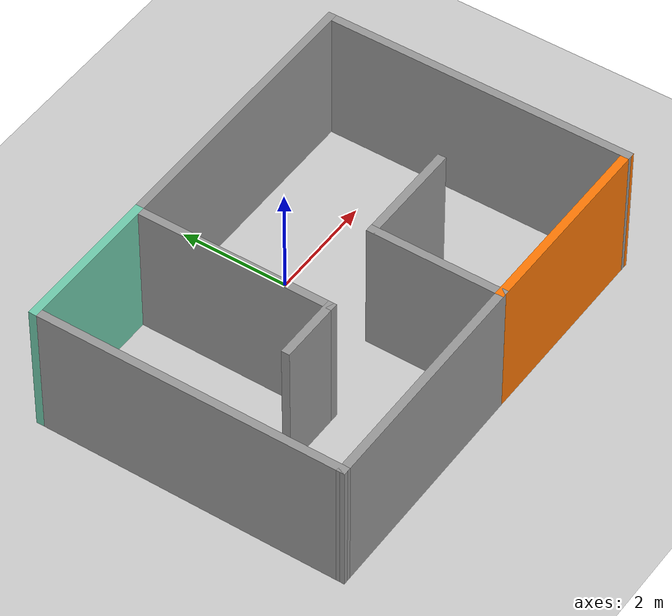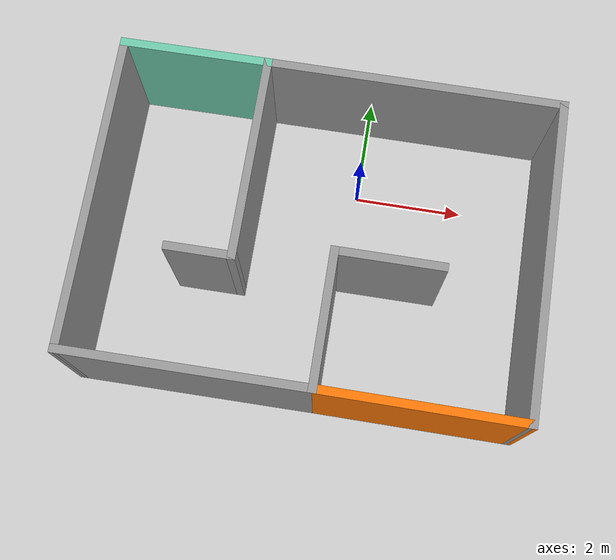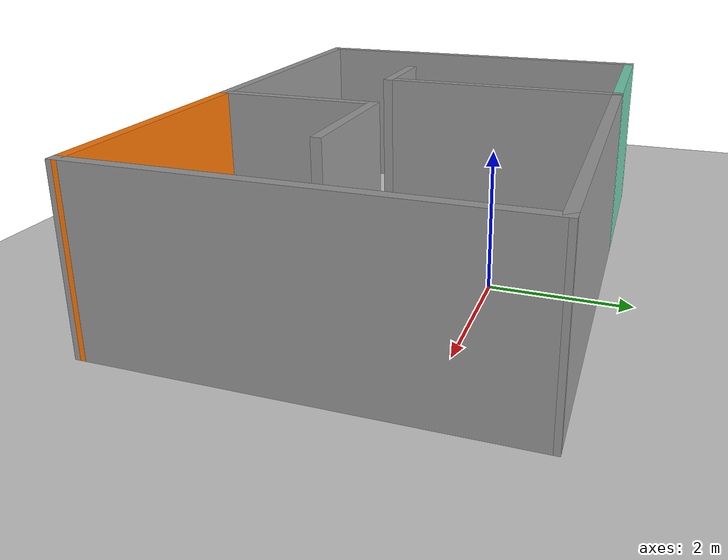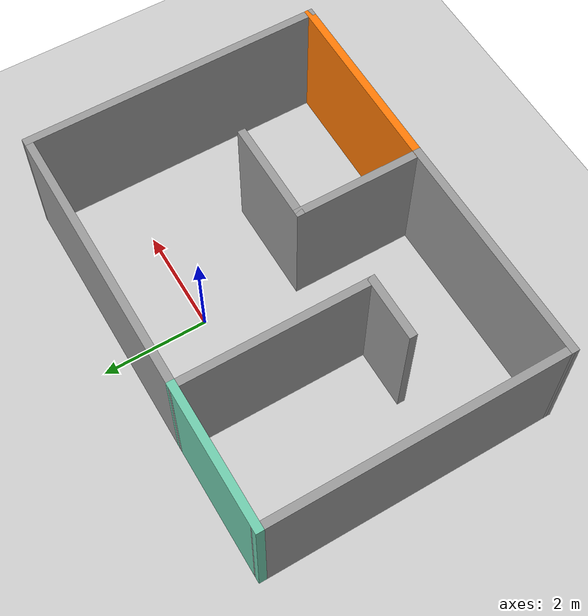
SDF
<sdf version='1.8'>
    <world name='default'>
        <physics name='1ms' type='ignored'>
            <max_step_size>0.001</max_step_size>
            <real_time_factor>1</real_time_factor>
            <real_time_update_rate>1000</real_time_update_rate>
        </physics>
        <plugin name='gz::sim::systems::Physics' filename='gz-sim-physics-system' />
        <plugin name='gz::sim::systems::UserCommands' filename='gz-sim-user-commands-system' />
        <plugin name='gz::sim::systems::SceneBroadcaster' filename='gz-sim-scene-broadcaster-system' />
        <plugin name='gz::sim::systems::Contact' filename='gz-sim-contact-system' />

        <light name='sun' type='directional'>
            <cast_shadows>1</cast_shadows>
            <pose>0 0 10 0 -0 0</pose>
            <diffuse>0.8 0.8 0.8 1</diffuse>
            <specular>0.2 0.2 0.2 1</specular>
            <attenuation>
                <range>1000</range>
                <constant>0.90000000000000002</constant>
                <linear>0.01</linear>
                <quadratic>0.001</quadratic>
            </attenuation>
            <direction>-0.5 0.1 -0.9</direction>
            <spot>
                <inner_angle>0</inner_angle>
                <outer_angle>0</outer_angle>
                <falloff>0</falloff>
            </spot>
        </light>
        <gravity>0 0 -9.8</gravity>
        <magnetic_field>6e-06 2.3e-05 -4.2e-05</magnetic_field>
        <atmosphere type='adiabatic' />
        <scene>
            <ambient>0.4 0.4 0.4 1</ambient>
            <background>0.7 0.7 0.7 1</background>
            <shadows>1</shadows>
        </scene>
        <model name='ground_plane'>
            <static>1</static>
            <link name='link'>
                <collision name='collision'>
                    <geometry>
                        <plane>
                            <normal>0 0 1</normal>
                            <size>100 100</size>
                        </plane>
                    </geometry>
                    <surface>
                        <friction>
                            <ode />
                        </friction>
                        <bounce />
                        <contact />
                    </surface>
                </collision>
                <visual name='visual'>
                    <geometry>
                        <plane>
                            <normal>0 0 1</normal>
                            <size>100 100</size>
                        </plane>
                    </geometry>
                    <material>
                        <ambient>0.8 0.8 0.8 1</ambient>
                        <diffuse>0.8 0.8 0.8 1</diffuse>
                        <specular>0.8 0.8 0.8 1</specular>
                    </material>
                    <plugin name='__default__' filename='__default__' />
                </visual>
            </link>
            <plugin name='__default__' filename='__default__' />
            <pose>0 0 0 0 -0 0</pose>
        </model>

        <model name='casa_colori'>
            <pose>-0.558815 -1.36358 0 0 -0 0</pose>
            <link name='Wall_41'>
            <collision name='Wall_41_Collision'>
                <geometry>
                <box>
                    <size>5.75 0.15 2.5</size>
                </box>
                </geometry>
                <pose>0 0 1.25 0 -0 0</pose>
            </collision>
            <visual name='Wall_41_Visual'>
                <pose>0 0 1.25 0 -0 0</pose>
                <geometry>
                <box>
                    <size>5.75 0.15 2.5</size>
                </box>
                </geometry>
                <material>
                <script>
                    <uri>file://media/materials/scripts/gazebo.material</uri>
                    <name>Gazebo/Grey</name>
                </script>
                <ambient>1 1 1 1</ambient>
                </material>
                <meta>
                <layer>0</layer>
                </meta>
            </visual>
            <pose>-3.92507 -0.001991 0 0 -0 -1.56899</pose>
            </link>
            <link name='Wall_43'>
            <collision name='Wall_43_Collision'>
                <geometry>
                <box>
                    <size>5.75 0.15 2.5</size>
                </box>
                </geometry>
                <pose>0 0 1.25 0 -0 0</pose>
            </collision>
            <visual name='Wall_43_Visual'>
                <pose>0 0 1.25 0 -0 0</pose>
                <geometry>
                <box>
                    <size>5.75 0.15 2.5</size>
                </box>
                </geometry>
                <material>
                <script>
                    <uri>file://media/materials/scripts/gazebo.material</uri>
                    <name>Gazebo/Grey</name>
                </script>
                <ambient>1 1 1 1</ambient>
                </material>
                <meta>
                <layer>0</layer>
                </meta>
            </visual>
            <pose>3.92493 -0.001991 0 0 -0 1.57261</pose>
            </link>
            <link name='Wall_59'>
            <collision name='Wall_59_Collision'>
                <geometry>
                <box>
                    <size>3.75 0.15 2.5</size>
                </box>
                </geometry>
                <pose>0 0 1.25 0 -0 0</pose>
            </collision>
            <visual name='Wall_59_Visual'>
                <pose>0 0 1.25 0 -0 0</pose>
                <geometry>
                <box>
                    <size>3.75 0.15 2.5</size>
                </box>
                </geometry>
                <material>
                <script>
                    <uri>file://media/materials/scripts/gazebo.material</uri>
                    <name>Gazebo/Grey</name>
                </script>
                <ambient>1 1 1 1</ambient>
                </material>
                <meta>
                <layer>0</layer>
                </meta>
            </visual>
            <pose>-1.33827 1.00214 0 0 -0 -1.5708</pose>
            </link>
            <link name='Wall_60'>
            <collision name='Wall_60_Collision'>
                <geometry>
                <box>
                    <size>1.25 0.15 2.5</size>
                </box>
                </geometry>
                <pose>0 0 1.25 0 -0 0</pose>
            </collision>
            <visual name='Wall_60_Visual'>
                <pose>0 0 1.25 0 -0 0</pose>
                <geometry>
                <box>
                    <size>1.25 0.15 2.5</size>
                </box>
                </geometry>
                <material>
                <script>
                    <uri>file://media/materials/scripts/gazebo.material</uri>
                    <name>Gazebo/Grey</name>
                </script>
                <ambient>1 1 1 1</ambient>
                </material>
                <meta>
                <layer>0</layer>
                </meta>
            </visual>
            <pose>-1.88827 -0.797857 0 0 -0 3.14159</pose>
            </link>
            <link name='Wall_65'>
            <collision name='Wall_65_Collision'>
                <geometry>
                <box>
                    <size>2.5 0.15 2.5</size>
                </box>
                </geometry>
                <pose>0 0 1.25 0 -0 0</pose>
            </collision>
            <visual name='Wall_65_Visual'>
                <pose>0 0 1.25 0 -0 0</pose>
                <geometry>
                <box>
                    <size>2.5 0.15 2.5</size>
                </box>
                </geometry>
                <material>
                <script>
                    <uri>file://media/materials/scripts/gazebo.material</uri>
                    <name>Gazebo/Grey</name>
                </script>
                <ambient>1 1 1 1</ambient>
                </material>
                <meta>
                <layer>0</layer>
                </meta>
            </visual>
            <pose>0.354323 -1.61403 0 0 -0 1.5708</pose>
            </link>
            <link name='Wall_66'>
            <collision name='Wall_66_Collision'>
                <geometry>
                <box>
                    <size>2 0.15 2.5</size>
                </box>
                </geometry>
                <pose>0 0 1.25 0 -0 0</pose>
            </collision>
            <visual name='Wall_66_Visual'>
                <pose>0 0 1.25 0 -0 0</pose>
                <geometry>
                <box>
                    <size>2 0.15 2.5</size>
                </box>
                </geometry>
                <material>
                <script>
                    <uri>file://media/materials/scripts/gazebo.material</uri>
                    <name>Gazebo/Grey</name>
                </script>
                <ambient>1 1 1 1</ambient>
                </material>
                <meta>
                <layer>0</layer>
                </meta>
            </visual>
            <pose>1.27932 -0.439025 0 0 -0 0</pose>
            </link>
            <link name='Wall_68'>
            <collision name='Wall_68_Collision'>
                <geometry>
                <box>
                    <size>4.42434 0.15 2.5</size>
                </box>
                </geometry>
                <pose>0 0 1.25 0 -0 0</pose>
            </collision>
            <visual name='Wall_68_Visual'>
                <pose>0 0 1.25 0 -0 0</pose>
                <geometry>
                <box>
                    <size>4.42434 0.15 2.5</size>
                </box>
                </geometry>
                <material>
                <script>
                    <uri>file://media/materials/scripts/gazebo.material</uri>
                    <name>Gazebo/Grey</name>
                </script>
                <ambient>1 1 1 1</ambient>
                </material>
                <meta>
                <layer>0</layer>
                </meta>
            </visual>
            <pose>-1.78284 -2.79551 0 0 -0 0.003033</pose>
            </link>
            <link name='Wall_69'>
            <collision name='Wall_69_Collision'>
                <geometry>
                <box>
                    <size>3.7257 0.15 2.5</size>
                </box>
                </geometry>
                <pose>0 0 1.25 0 -0 0</pose>
            </collision>
            <visual name='Wall_69_Visual'>
                <pose>0 0 1.25 0 -0 0</pose>
                <geometry>
                <box>
                    <size>3.7257 0.15 2.5</size>
                </box>
                </geometry>
                <material>
                <script>
                    <uri>file://media/materials/scripts/gazebo.material</uri>
                    <name>Gazebo/Grey</name>
                </script>
                <ambient>0.996078 0.47451 0.0196078 1</ambient>
                </material>
                <meta>
                <layer>0</layer>
                </meta>
            </visual>
            <pose>2.14216 -2.79551 0 0 -0 -0.003626</pose>
            </link>
            <link name='Wall_71'>
            <collision name='Wall_71_Collision'>
                <geometry>
                <box>
                    <size>2.74187 0.15 2.5</size>
                </box>
                </geometry>
                <pose>0 0 1.25 0 -0 0</pose>
            </collision>
            <visual name='Wall_71_Visual'>
                <pose>0 0 1.25 0 -0 0</pose>
                <geometry>
                <box>
                    <size>2.74187 0.15 2.5</size>
                </box>
                </geometry>
                <material>
                <script>
                    <uri>file://media/materials/scripts/gazebo.material</uri>
                    <name>Gazebo/Grey</name>
                </script>
                <ambient>0.435294 0.796078 0.67451 1</ambient>
                </material>
                <meta>
                <layer>0</layer>
                </meta>
            </visual>
            <pose>-2.63421 2.80008 0 0 -0 0.001595</pose>
            </link>
            <link name='Wall_72'>
            <collision name='Wall_72_Collision'>
                <geometry>
                <box>
                    <size>5.40814 0.15 2.5</size>
                </box>
                </geometry>
                <pose>0 0 1.25 0 -0 0</pose>
            </collision>
            <visual name='Wall_72_Visual'>
                <pose>0 0 1.25 0 -0 0</pose>
                <geometry>
                <box>
                    <size>5.40814 0.15 2.5</size>
                </box>
                </geometry>
                <material>
                <script>
                    <uri>file://media/materials/scripts/gazebo.material</uri>
                    <name>Gazebo/Grey</name>
                </script>
                <ambient>1 1 1 1</ambient>
                </material>
                <meta>
                <layer>0</layer>
                </meta>
            </visual>
            <pose>1.29079 2.80008 0 0 -0 -0.000786</pose>
            </link>
            <static>1</static>
        </model>

        <!-- Spawn Turtlebot4 -->
    </world>
</sdf>
